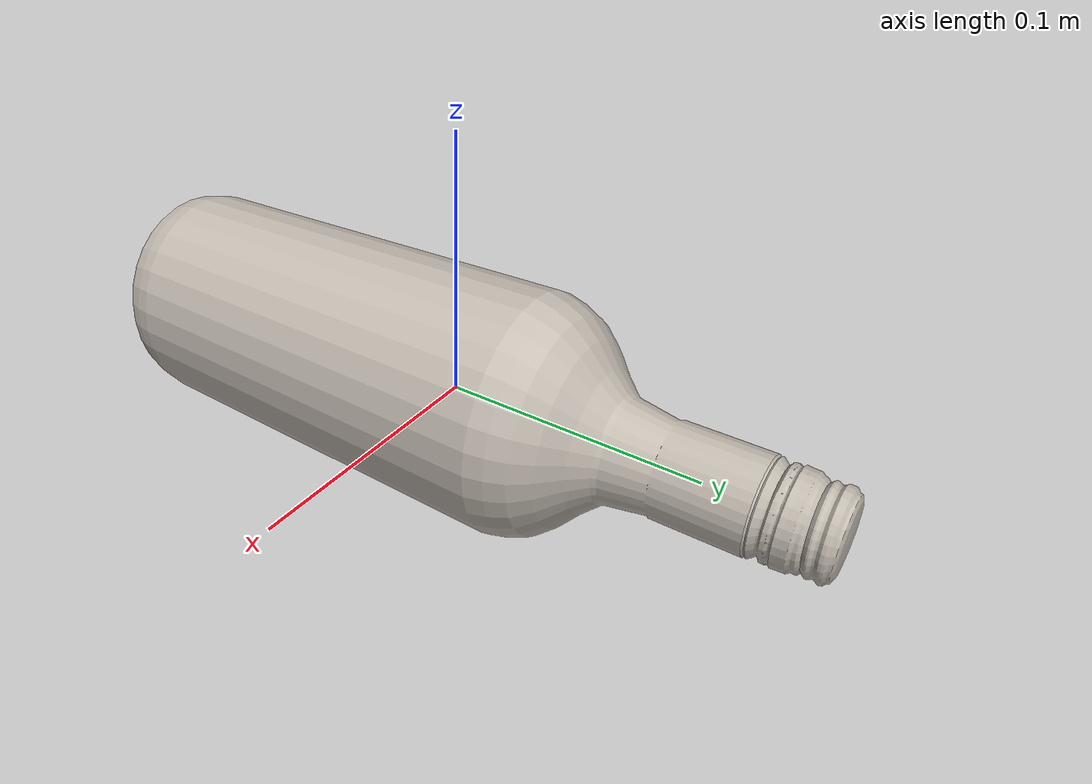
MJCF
<mujoco model="vase_71010086">
  <compiler angle="radian"/>
  <asset>
    <texture type="2d" name="vase_71010086_tex" file="vase_71010086_visual_0.png"/>
    <material name="vase_71010086_mat" texture="vase_71010086_tex"/>
    <mesh name="vase_71010086_visual" content_type="model/obj" file="vase_71010086_visual.obj" scale="-1 0.991781 1"/>
    <mesh name="vase_71010086_c0" content_type="model/obj" file="vase_71010086_c0.obj" scale="-1 0.991781 1"/>
    <mesh name="vase_71010086_c1" content_type="model/obj" file="vase_71010086_c1.obj" scale="-1 0.991781 1"/>
  </asset>
  <worldbody>
    <body name="vase_71010086">
      <freejoint/>
      <geom name="vase_71010086_visual" type="mesh" mesh="vase_71010086_visual" mass="1e-8" contype="0" conaffinity="0" group="2" material="vase_71010086_mat"/>
      <geom name="vase_71010086_c0" type="mesh" mesh="vase_71010086_c0" group="3" density="372.192" friction="0.9 0.05 0.005" condim="4" rgba="0.4 0.5 0.9 0.35"/>
      <geom name="vase_71010086_c1" type="mesh" mesh="vase_71010086_c1" group="3" density="372.192" friction="0.9 0.05 0.005" condim="4" rgba="0.4 0.5 0.9 0.35"/>
    </body>
  </worldbody>
</mujoco>
